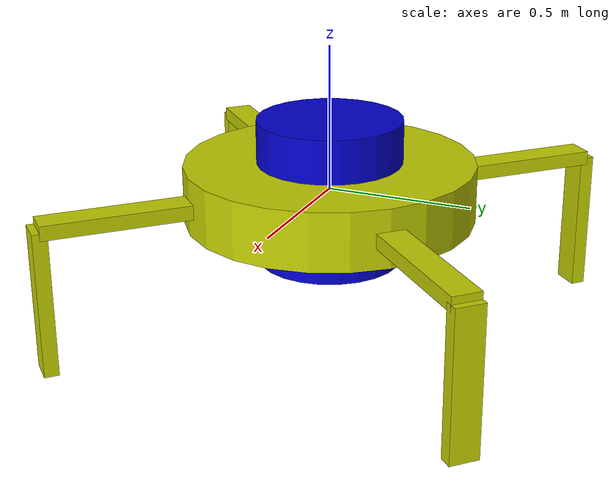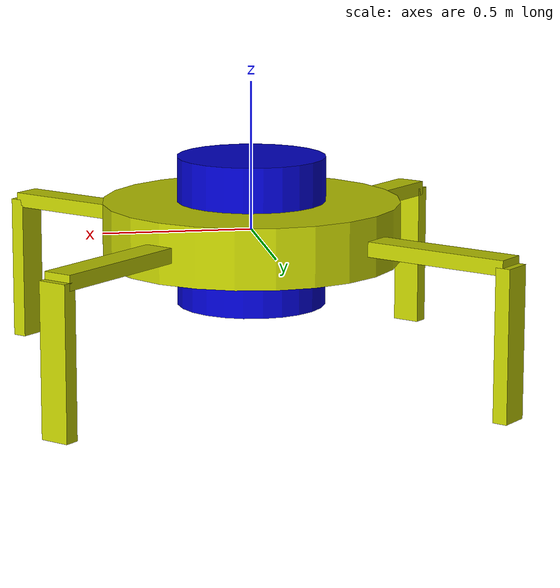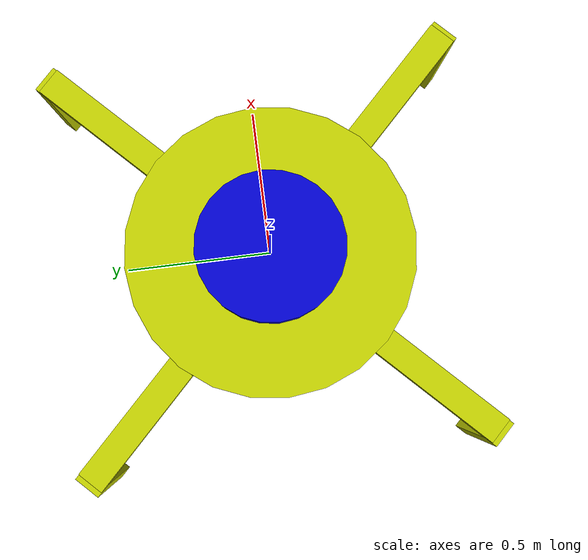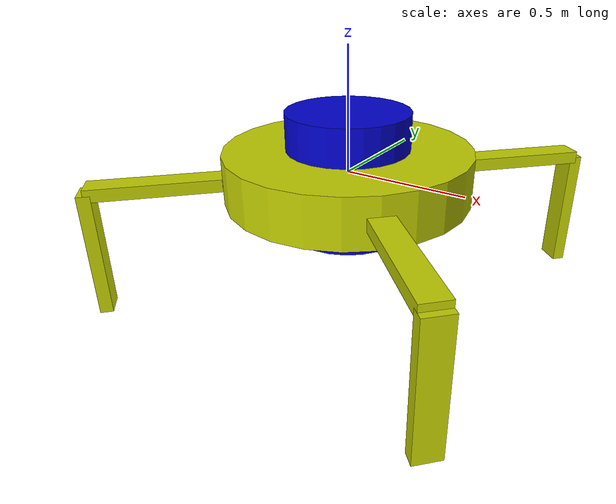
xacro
<?xml version="1.0"?>
<robot name="dragoon" xmlns:xacro="http://ros.org/wiki/xacro">

  <xacro:property name="base_rad" value="0.5" />
  <xacro:property name="base_len" value="0.2" />
  <xacro:property name="head_rad" value="0.25" />
  <xacro:property name="head_len" value="0.5" />
  <xacro:property name="legx" value="0.5" />
  <xacro:property name="legy" value="0.1" />
  <xacro:property name="legz" value="0.05" />
  <xacro:property name="joint_rad" value="0.025" />
  <xacro:property name="pi" value="3.1415" />
  <xacro:property name="sqrt2" value="1.4142"/>

  <material name="blue">
    <color rgba="0 0 0.8 1"/>
  </material>

  <material name="yellow">
    <color rgba="0.75 0.8 0 1"/>
  </material>

  <material name="red">
    <color rgba="0.8 0 0 1"/>
  </material>

  <xacro:macro name="default_inertial" params="mass">
    <inertial>
      <mass value="${mass}" />
      <inertia ixx="1.0" ixy="0.0" ixz="0.0" iyy="1.0" iyz="0.0" izz="1.0" />
    </inertial>
  </xacro:macro>

  <link name="base_link">
    <visual>
      <geometry>
        <cylinder radius="${base_rad}" length="${base_len}"/>
      </geometry>
      <material name="yellow"/>
    </visual>
    <collision>
      <geometry>
        <cylinder radius="${base_rad}" length="${base_len}"/>
      </geometry>
    </collision>
    <xacro:default_inertial mass="10"/>
  </link>

  <xacro:macro name="leg" params="pref r f">
    <xacro:property name="leg_x_offset" value="${(r+(1-r)*(-1))*base_rad/sqrt2}"/>
    <xacro:property name="leg_y_offset" value="${(f+(1-f)*(-1))*base_rad/sqrt2}"/>
    <xacro:property name="leg_orient" value="${((r-f)/2+5/4-f*r)*pi}"/>

    <xacro:macro name="leg_joint" params="id xyz rpy p_link c_link">
      <joint name="joint_${id}" type="revolute">
        <origin rpy="${rpy}" xyz="${xyz}"/>
        <axis xyz="0 ${r+(1-r)*(-1)} 0"/>
        <limit effort="1000.0" lower="${-pi/3}" upper="${pi/3}" velocity="0.5"/>
        <parent link="${p_link}"/>
        <child link="${c_link}"/>
      </joint>
    </xacro:macro>

    <xacro:macro name="leg_part" params="id xyz rpy">
      <link name="part_${id}">
        <visual>
          <geometry>
            <box size="${legx} ${legy} ${legz}"/>
          </geometry>
          <origin xyz="${xyz}" rpy="${rpy}"/>
          <material name="yellow"/>
        </visual>
        <collision>
          <geometry>
            <box size="${legx} ${legy} ${legz}"/>
          </geometry>
        </collision>
        <xacro:default_inertial mass="10"/>
      </link>
    </xacro:macro>

    <xacro:leg_joint id="1_${pref}" xyz="${leg_x_offset} ${leg_y_offset} 0" rpy="0 0 ${leg_orient}" p_link="base_link" c_link="part_1_${pref}"/>
    <xacro:leg_part id="1_${pref}" xyz="${legx/2} 0 0" rpy="0 0 0"/>
    <xacro:leg_joint id="2_${pref}" xyz="${legx} 0 0" rpy="0 ${pi/2} 0" p_link="part_1_${pref}" c_link="part_2_${pref}"/>
    <xacro:leg_part id="2_${pref}" xyz="${legx/2} 0 0" rpy="0 0 0"/>
  </xacro:macro>

  <xacro:leg pref="front_right" f="1" r="1"/>
  <xacro:leg pref="front_left" f="1" r="0"/>
  <xacro:leg pref="back_left" f="0" r="0"/>
  <xacro:leg pref="back_right" f="0" r="1"/>

  <joint name="base_to_head" type="revolute">
    <origin rpy="0 0 0" xyz="0 0 0"/>
    <axis xyz="0 0 1"/>
    <limit effort="1000.0" lower="${-2*pi}" upper="${2*pi}" velocity="0.8"/>
    <parent link="base_link"/>
    <child link="head"/>
  </joint>

  <link name="head">
    <visual>
      <geometry>
        <cylinder radius="${head_rad}" length="${head_len}"/>
      </geometry>
      <material name="blue"/>
    </visual>
    <collision>
      <geometry>
        <cylinder radius="${head_rad}" length="${head_len}"/>
      </geometry>
    </collision>
    <xacro:default_inertial mass="10"/>
  </link>
</robot>
